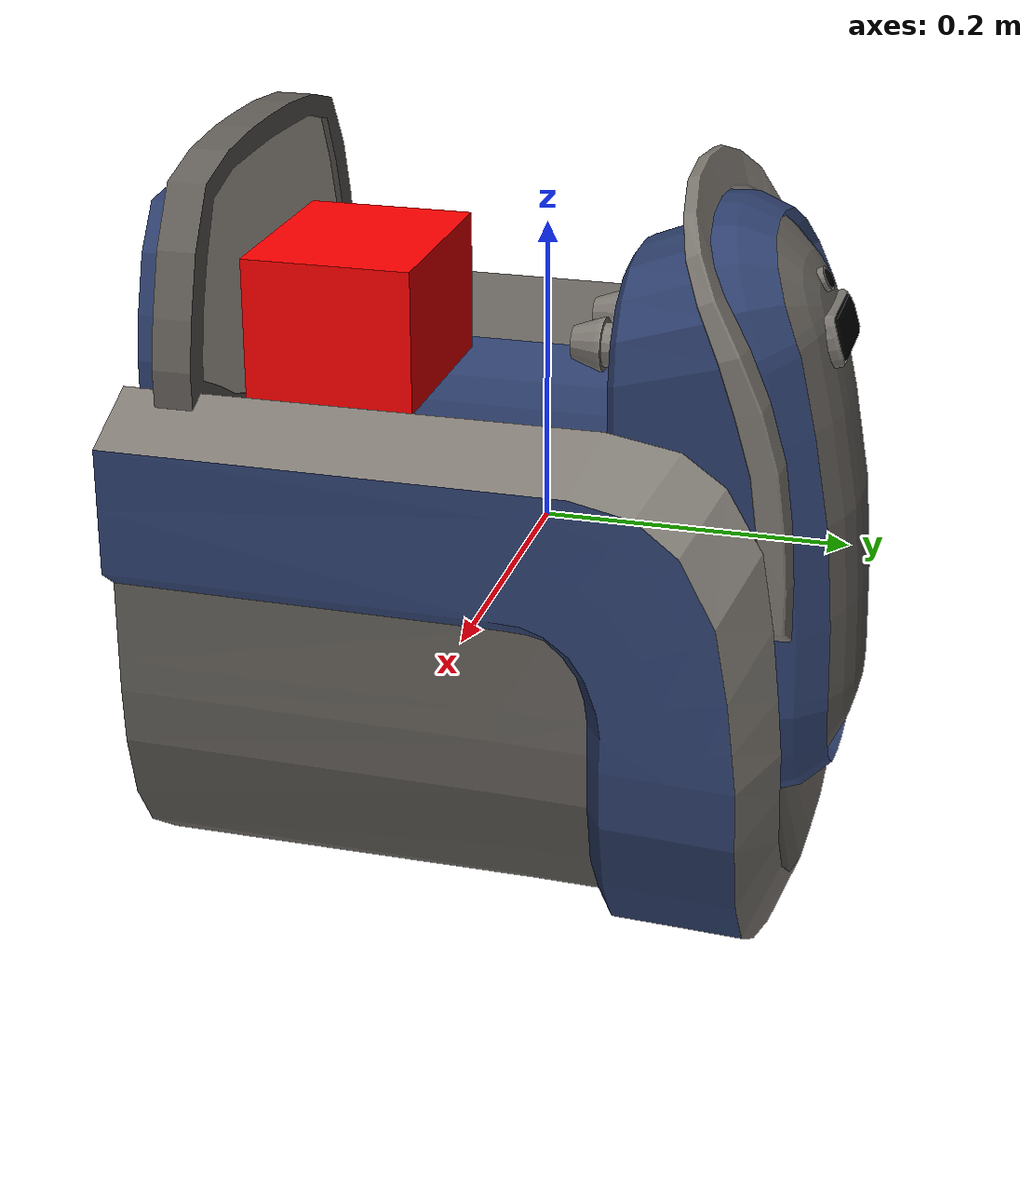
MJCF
<mujoco model="coffee_machine_16">
  <compiler autolimits="true" boundmass="0.01" angle="radian"/>
  <default>
    <default class="/">
      <default class="__VISUAL_MJT__">
        <geom contype="0" conaffinity="0" group="0"/>
      </default>
      <default class="__STRUCTURAL_MJT__">
        <geom contype="8" conaffinity="15" group="4" friction="0.90000000000000002 0.90000000000000002 0.001" solref="0.025000000000000001 1" solimp="0.998 0.998 0.001"/>
      </default>
      <default class="__DYNAMIC_MJT__">
        <geom contype="1" conaffinity="15" group="4" friction="0.90000000000000002 0.90000000000000002 0.001" solref="0.025000000000000001 1" solimp="0.998 0.998 0.001"/>
      </default>
    </default>
  </default>
  <asset>
    <material name="material_coffee_machine_backup_mat" class="/" specular="0.5" shininess="0.5" rgba="0.5 0.5 0.5 1"/>
    <material name="material_Coffee_Machine_Readout_Mat_Off" class="/" specular="0.5" shininess="0.5" rgba="0 0 0 1"/>
    <texture name="Coffee_Machine_Decal_Mat" type="2d" file="Coffee_Machine_Decal_AlbedoTransparency.png"/>
    <material name="material_Coffee_Machine_Decal_Mat" class="/" texture="Coffee_Machine_Decal_Mat" specular="0.5" shininess="0.5" rgba="1 1 1 1"/>
    <texture name="Coffee_Machine_Metal_Mat" type="2d" file="MetalBumpy_AlbedoTransparency.png"/>
    <material name="material_Coffee_Machine_Metal_Mat" class="/" texture="Coffee_Machine_Metal_Mat" specular="0.5" shininess="0.5" rgba="0.66176469999999998 0.66176469999999998 0.66176469999999998 1"/>
    <texture name="Coffee_Machine_Secondary1_Color_Mat" type="2d" file="BrushedIron_AlbedoTransparency.png"/>
    <material name="material_Coffee_Machine_Secondary1_Color_Mat" class="/" texture="Coffee_Machine_Secondary1_Color_Mat" specular="0.5" shininess="0.5" rgba="0.51470590000000005 0.51470590000000005 0.51470590000000005 1"/>
    <texture name="Coffee_Machine_Primary1_Color_Mat" type="2d" file="BumpyPlastic_Albedo.png"/>
    <material name="material_Coffee_Machine_Primary1_Color_Mat" class="/" texture="Coffee_Machine_Primary1_Color_Mat" specular="0.5" shininess="0.5" rgba="0.234375 0.34090910000000002 0.625 1"/>
    <mesh name="coffee_machine_16_coffee_machine_16_0" class="/" file="coffee_machine_16_coffee_machine_16/coffee_machine_16_coffee_machine_16_0.obj" scale="1 1 1"/>
    <mesh name="coffee_machine_16_coffee_machine_16_1" class="/" file="coffee_machine_16_coffee_machine_16/coffee_machine_16_coffee_machine_16_1.obj" scale="1 1 1"/>
    <mesh name="coffee_machine_16_coffee_machine_16_2" class="/" file="coffee_machine_16_coffee_machine_16/coffee_machine_16_coffee_machine_16_2.obj" scale="1 1 1"/>
    <mesh name="coffee_machine_16_coffee_machine_16_3" class="/" file="coffee_machine_16_coffee_machine_16/coffee_machine_16_coffee_machine_16_3.obj" scale="1 1 1"/>
    <mesh name="coffee_machine_16_coffee_machine_16_4" class="/" file="coffee_machine_16_coffee_machine_16/coffee_machine_16_coffee_machine_16_4.obj" scale="1 1 1"/>
    <mesh name="coffee_machine_16_coffee_machine_16_5" class="/" file="coffee_machine_16_coffee_machine_16/coffee_machine_16_coffee_machine_16_5.obj" scale="1 1 1"/>
  </asset>
  <worldbody>
    <body name="coffee_machine_16">
      <joint name="coffee_machine_16_free" class="/" type="free" pos="0 0 0" axis="0 0 1" stiffness="0" range="0 0" armature="0" damping="0.10000000000000001" frictionloss="0"/>
      <body name="coffee_machine_16_coffee_machine_16" pos="-0 -0.23305999999999999 -0.0075100000000000002" quat="1 0 0 0">
        <geom name="coffee_machine_16_coffee_machine_16_0" class="__VISUAL_MJT__" type="mesh" material="material_coffee_machine_backup_mat" shellinertia="true" mesh="coffee_machine_16_coffee_machine_16_0"/>
        <geom name="coffee_machine_16_coffee_machine_16_1" class="__VISUAL_MJT__" type="mesh" material="material_Coffee_Machine_Readout_Mat_Off" shellinertia="false" mesh="coffee_machine_16_coffee_machine_16_1"/>
        <geom name="coffee_machine_16_coffee_machine_16_2" class="__VISUAL_MJT__" type="mesh" material="material_Coffee_Machine_Decal_Mat" shellinertia="true" mesh="coffee_machine_16_coffee_machine_16_2"/>
        <geom name="coffee_machine_16_coffee_machine_16_3" class="__VISUAL_MJT__" type="mesh" material="material_Coffee_Machine_Metal_Mat" shellinertia="false" mesh="coffee_machine_16_coffee_machine_16_3"/>
        <geom name="coffee_machine_16_coffee_machine_16_4" class="__VISUAL_MJT__" type="mesh" material="material_Coffee_Machine_Secondary1_Color_Mat" shellinertia="false" mesh="coffee_machine_16_coffee_machine_16_4"/>
        <geom name="coffee_machine_16_coffee_machine_16_5" class="__VISUAL_MJT__" type="mesh" material="material_Coffee_Machine_Primary1_Color_Mat" shellinertia="false" mesh="coffee_machine_16_coffee_machine_16_5"/>
        <site name="coffee_machine_16_Receptacle_0" class="/" type="box" rgba="1 0 0 1" size="0.06879916787147522 0.055500328540802002 0.046923398971557617" pos="-0 0.10730032622814178 0.1421000063419342" quat="1 0 0 0"/>
        <geom name="coffee_machine_16_PrimitiveCollider_0" class="__DYNAMIC_MJT__" type="box" size="0.21329542994499207 0.22980356216430664 0.16878286004066467" rgba="0 1 0 1" pos="-0 0.22980356216430664 -0.083098083734512329" quat="1 0 0 0"/>
        <geom name="coffee_machine_16_PrimitiveCollider_1" class="__DYNAMIC_MJT__" type="box" size="0.15604168176651001 0.026064932346343994 0.14791488647460938" rgba="0 1 0 1" pos="-0 0.026064932346343994 0.11899280548095703" quat="1 0 0 0"/>
        <geom name="coffee_machine_16_PrimitiveCollider_2" class="__DYNAMIC_MJT__" type="box" size="0.11898177862167358 0.069081440567970276 0.16207787394523621" rgba="0 1 0 1" pos="2.0099913400350999e-10 0.37172785401344299 0.067660227417945862" quat="0.99670052528381348 0.081166587769985199 -2.4977186985353228e-10 -2.4435662382416012e-09"/>
      </body>
    </body>
  </worldbody>
</mujoco>
